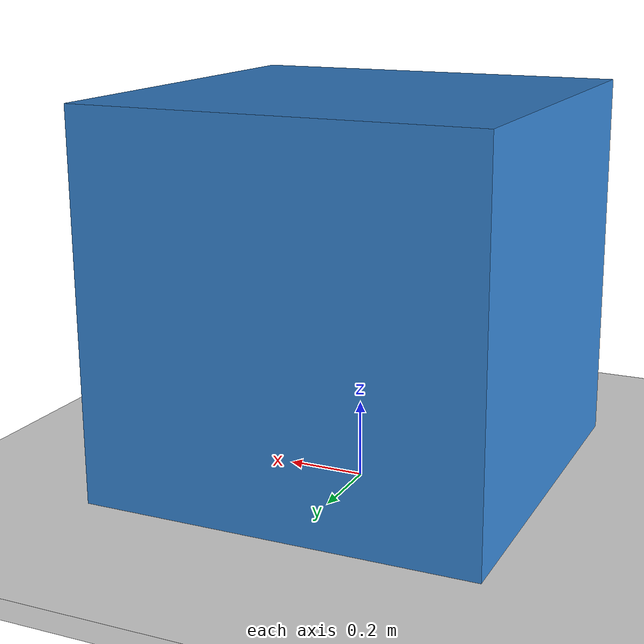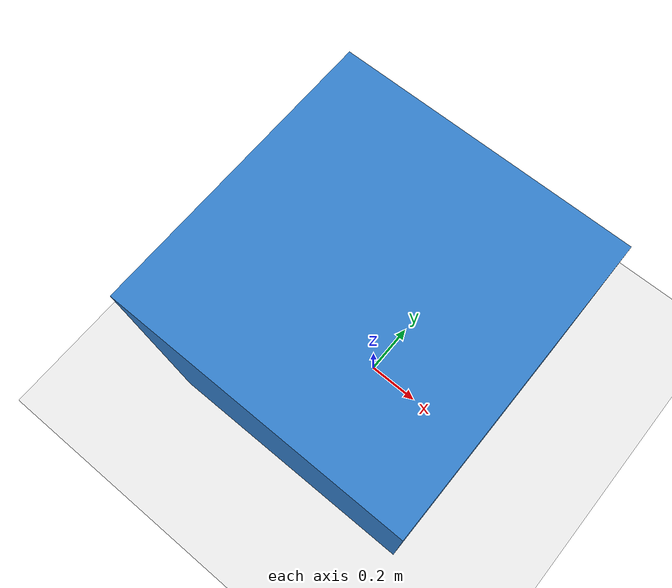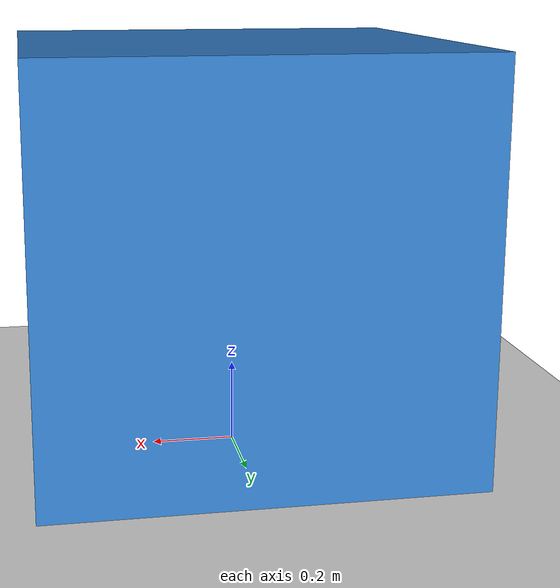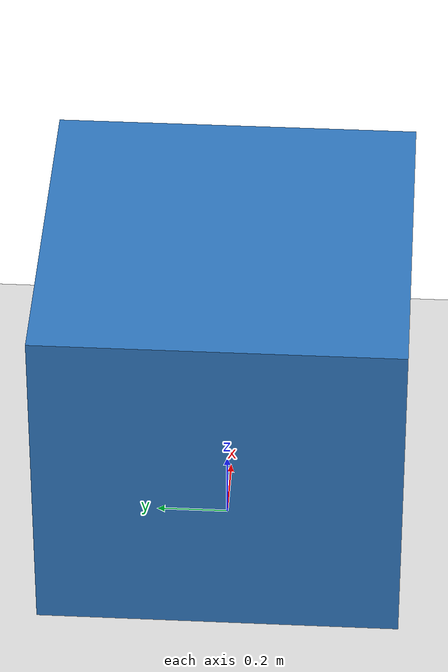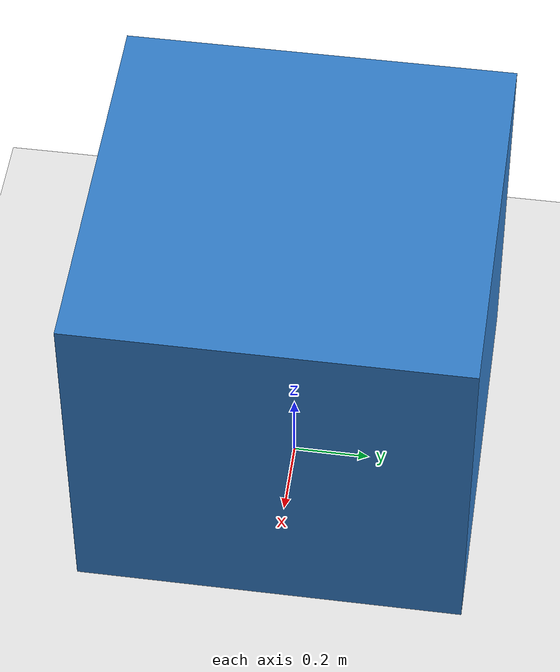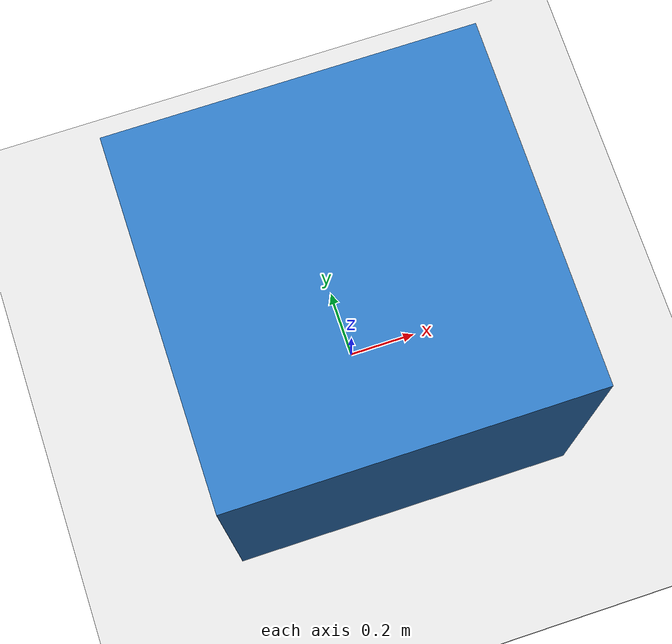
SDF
<?xml version="1.0"?>
<sdf version="1.6">
  <world name="default">

    <!-- Physics -->
    <physics type="ode">
      <max_step_size>0.001</max_step_size>
      <real_time_factor>1</real_time_factor>
      <real_time_update_rate>1000</real_time_update_rate>
      <gravity>0 0 -9.81</gravity>
    </physics>

    <!-- Scene -->
    <scene>
      <ambient>0.4 0.4 0.4 1</ambient>
      <background>0.25 0.35 0.5 1</background>
      <shadows>true</shadows>
    </scene>

    <!-- Sun -->
    <light type="directional" name="sun">
      <cast_shadows>true</cast_shadows>
      <pose>0 0 10 0 0 0</pose>
      <diffuse>0.8 0.8 0.8 1</diffuse>
      <specular>0.2 0.2 0.2 1</specular>
      <attenuation>
        <range>1000</range>
        <constant>0.9</constant>
        <linear>0.01</linear>
        <quadratic>0.001</quadratic>
      </attenuation>
      <direction>-0.5 0.1 -0.9</direction>
    </light>

    <!-- Ground Plane -->
    <model name="ground_plane">
      <static>true</static>
      <link name="link">
        <collision name="collision">
          <geometry>
            <plane>
              <normal>0 0 1</normal>
              <size>100 100</size>
            </plane>
          </geometry>
          <surface>
            <friction>
              <ode>
                <mu>100</mu>
                <mu2>50</mu2>
              </ode>
            </friction>
          </surface>
        </collision>
        <visual name="visual">
          <cast_shadows>false</cast_shadows>
          <geometry>
            <plane>
              <normal>0 0 1</normal>
              <size>100 100</size>
            </plane>
          </geometry>
          <material>
            <ambient>0.3 0.3 0.3 1</ambient>
            <diffuse>0.3 0.3 0.3 1</diffuse>
            <specular>0.01 0.01 0.01 1</specular>
          </material>
        </visual>
      </link>
    </model>

    <!-- Grid untuk referensi -->
    <model name="grid">
      <static>true</static>
      <link name="link">
        <visual name="visual">
          <cast_shadows>false</cast_shadows>
          <pose>0 0 0.01 0 0 0</pose>
          <geometry>
            <plane>
              <normal>0 0 1</normal>
              <size>50 50</size>
            </plane>
          </geometry>
          <material>
            <script>
              <uri>file://media/materials/scripts/gazebo.material</uri>
              <name>Gazebo/WhiteGlow</name>
            </script>
          </material>
        </visual>
      </link>
    </model>

    <!-- GUI -->
    <gui fullscreen='0'>
      <camera name='user_camera'>
        <pose>-5 -5 3 0 0.3 0.785</pose>
        <view_controller>orbit</view_controller>
      </camera>
    </gui>

    <!-- Load box_panjang model -->
    <include>
        <uri>model://box_panjang</uri>
        <pose>0 0 0 0 0 0</pose>
    </include>

  </world>
</sdf>

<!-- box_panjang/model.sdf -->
<sdf version="1.6">
  <model name="box_panjang">
    <static>false</static>

    <link name="base_link">
      <pose>0 0 0.5 0 0 0</pose>

      <collision name="collision">
        <geometry>
          <box><size>1 1 1</size></box>
        </geometry>
      </collision>

      <visual name="visual">
        <geometry>
          <box><size>1 1 1</size></box>
        </geometry>
        <material>
          <ambient>0.2 0.5 0.8 1</ambient>
          <diffuse>0.2 0.5 0.8 1</diffuse>
        </material>
      </visual>
    </link>

    <!-- plugin -->
    <plugin name="box_control_plugin" filename="libbox_control_plugin.so">
      <ros>
        <namespace>/</namespace>
        <remapping>cmd_vel:=/cmd_vel</remapping>
      </ros>
      <update_rate>50.0</update_rate>
    </plugin>

  </model>
</sdf>
